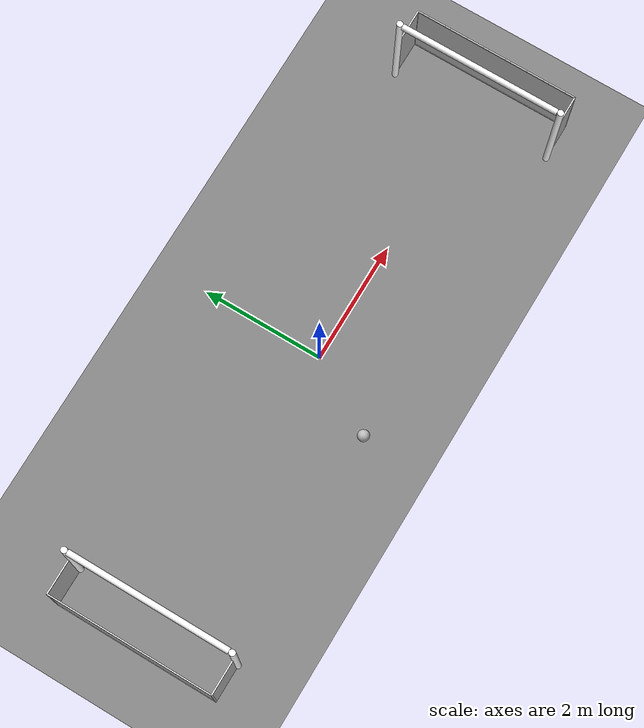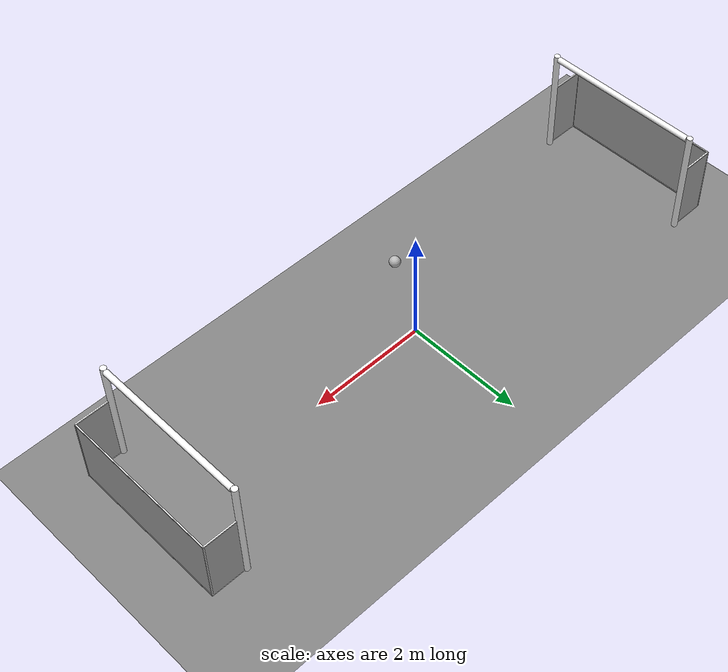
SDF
<sdf version="1.8">
 <world name="default">
  <light type="directional" name="my_directional_light">
   <pose>0 0 10 0 0 0</pose>
   <direction>-1 -2 -15</direction>
   <intensity>1.8</intensity>
   <diffuse>0.8 0.8 0.8 1</diffuse>
   <specular>0.5 0.5 0.5 1</specular>
   <cast_shadows>false</cast_shadows>
  </light>
  <scene><shadows>false</shadows></scene>
  <physics type="ode">
   <gravity>0 0 -9.81</gravity>
   <real_time_update_rate>2000</real_time_update_rate>
   <max_step_size>0.0005</max_step_size>
   <ode>
    <solver><type>quick</type><iters>50</iters><sor>1.4</sor></solver>
    <constraints>
     <cfm>0.0</cfm>
     <erp>0.2</erp>
     <contact_max_correcting_vel>100.0</contact_max_correcting_vel>
     <contact_surface_layer>0.1</contact_surface_layer>
    </constraints>
   </ode>
  </physics>
  <include><uri>model://soft_ground_plane</uri></include>
  <include><uri>model://teensize_ball</uri><pose>-0.700000 -1.180000 0.095 0 0 0</pose></include>
  <include><uri>model://teensize_goal</uri><pose>4.525 0 0 0 0 0</pose></include>
  <include><uri>model://teensize_goal2</uri><pose>-4.525 0 0 0 0 3.141592</pose></include>
 </world>
</sdf>

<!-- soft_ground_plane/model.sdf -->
<sdf version="1.5">
  <model name="soft_ground_plane">
    <static>true</static>
    <link name="link">
      <collision name="collision">
        <geometry>
          <plane>
            <normal>0 0 1</normal>
            <size>100 100</size>
          </plane>
        </geometry>
        <surface>
          <friction>
            <ode>
              <mu>50</mu>
              <mu2>50</mu2>
            </ode>
          </friction>
          <contact>
            <ode>
              <soft_cfm>0.0</soft_cfm>
              <soft_erp>0.2</soft_erp>
            </ode>
          </contact>
        </surface>
      </collision>
      <visual name="visual">
        <cast_shadows>false</cast_shadows>
        <geometry>
          <plane>
            <normal>0 0 1</normal>
            <size>100 100</size>
          </plane>
        </geometry>
        <material>
          <ambient>0.5 0.5 0.5 1</ambient>
          <diffuse>0.5 0.5 0.5 1</diffuse>
          <specular>0.1 0.1 0.1 1</specular>
        </material>
      </visual>
    </link>
  </model>
</sdf>

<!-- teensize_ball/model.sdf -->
<sdf version="1.5">
  <model name="teensize_ball"> <!-- The TeenSize ball is FIFA size 3, assumed to be diameter 19cm and weight 260 grams -->
    <pose>0 0 0.095 0 0 0</pose>
    <static>false</static>
    <link name="ball">
      <velocity_decay>
        <linear>0</linear>
        <angular>0.0008</angular>
      </velocity_decay>
      <inertial>
        <mass>0.260</mass>
        <inertia> <!-- For the origin of this inertia tensor refer to: https://en.wikipedia.org/wiki/List_of_moments_of_inertia#List_of_3D_inertia_tensors -->
          <ixx>0.00156</ixx>
          <iyy>0.00156</iyy>
          <izz>0.00156</izz>
          <ixy>0</ixy>
          <ixz>0</ixz>
          <iyz>0</iyz>
        </inertia>
      </inertial>
      <collision name="collision">
        <geometry>
          <sphere>
            <radius>0.095</radius>
          </sphere>
        </geometry>
      </collision>
      <visual name="visual">
        <geometry>
          <sphere>
            <radius>0.095</radius>
          </sphere>
        </geometry>
        <material>
          <pbr>
            <metal>
              <albedo_map>materials/textures/ball_official.png</albedo_map>
            </metal>
          </pbr>
        </material>
      </visual>
    </link>
  </model>
</sdf>

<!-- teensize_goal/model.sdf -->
<sdf version="1.5">
  <model name="teensize_goal">
    <static>true</static>
    <link name="left_post">
      <pose>0 1.35 0.95 0 0 0</pose>
      <collision name="collision">
        <geometry>
          <cylinder>
            <radius>0.05</radius>
            <length>1.9</length>
          </cylinder>
        </geometry>
      </collision>
      <visual name="visual">
        <geometry>
          <cylinder>
            <radius>0.05</radius>
            <length>1.9</length>
          </cylinder>
        </geometry>
        <material>
          <ambient>1 1 1 1</ambient>
          <diffuse>1 1 1 1</diffuse>
          <specular>0.1 0.1 0.1 1</specular>
        </material>
      </visual>
    </link>
    <link name="left_support_horiz_lower">
      <pose>0.3 1.35 0.01 0 0 0</pose>
      <collision name="collision">
        <geometry>
          <box>
            <size>0.6 0.02 0.02</size>
          </box>
        </geometry>
      </collision>
      <visual name="visual">
        <geometry>
          <box>
            <size>0.6 0.02 0.02</size>
          </box>
        </geometry>
        <material>
          <ambient>1 1 1 1</ambient>
          <diffuse>1 1 1 1</diffuse>
          <specular>0.1 0.1 0.1 1</specular>
        </material>
      </visual>
    </link>
    <link name="left_support_horiz_upper">
      <pose>0.3 1.35 1.2 0 0 0</pose>
      <collision name="collision">
        <geometry>
          <box>
            <size>0.6 0.02 0.02</size>
          </box>
        </geometry>
      </collision>
      <visual name="visual">
        <geometry>
          <box>
            <size>0.6 0.02 0.02</size>
          </box>
        </geometry>
        <material>
          <ambient>1 1 1 1</ambient>
          <diffuse>1 1 1 1</diffuse>
          <specular>0.1 0.1 0.1 1</specular>
        </material>
      </visual>
    </link>
    <link name="left_support_vertical">
      <pose>0.6 1.35 0.6 0 1.5708 0</pose>
      <collision name="collision">
        <geometry>
          <box>
            <size>1.2 0.02 0.02</size>
          </box>
        </geometry>
      </collision>
      <visual name="visual">
        <geometry>
          <box>
            <size>1.2 0.02 0.02</size>
          </box>
        </geometry>
        <material>
          <ambient>1 1 1 1</ambient>
          <diffuse>1 1 1 1</diffuse>
          <specular>0.1 0.1 0.1 1</specular>
        </material>
      </visual>
    </link>
    <link name="right_support_horiz_lower">
      <pose>0.3 -1.35 0.01 0 0 0</pose>
      <collision name="collision">
        <geometry>
          <box>
            <size>0.6 0.02 0.02</size>
          </box>
        </geometry>
      </collision>
      <visual name="visual">
        <geometry>
          <box>
            <size>0.6 0.02 0.02</size>
          </box>
        </geometry>
        <material>
          <ambient>1 1 1 1</ambient>
          <diffuse>1 1 1 1</diffuse>
          <specular>0.1 0.1 0.1 1</specular>
        </material>
      </visual>
    </link>
    <link name="right_support_horiz_upper">
      <pose>0.3 -1.35 1.2 0 0 0</pose>
      <collision name="collision">
        <geometry>
          <box>
            <size>0.6 0.02 0.02</size>
          </box>
        </geometry>
      </collision>
      <visual name="visual">
        <geometry>
          <box>
            <size>0.6 0.02 0.02</size>
          </box>
        </geometry>
        <material>
          <ambient>1 1 1 1</ambient>
          <diffuse>1 1 1 1</diffuse>
          <specular>0.1 0.1 0.1 1</specular>
        </material>
      </visual>
    </link>
    <link name="right_support_vertical">
      <pose>0.6 -1.35 0.6 0 1.5708 0</pose>
      <collision name="collision">
        <geometry>
          <box>
            <size>1.2 0.02 0.02</size>
          </box>
        </geometry>
      </collision>
      <visual name="visual">
        <geometry>
          <box>
            <size>1.2 0.02 0.02</size>
          </box>
        </geometry>
        <material>
          <ambient>1 1 1 1</ambient>
          <diffuse>1 1 1 1</diffuse>
          <specular>0.1 0.1 0.1 1</specular>
        </material>
      </visual>
    </link>
    <link name="center_support_horiz_lower">
      <pose>0.6 0 0.01 0 1.5708 0</pose>
      <collision name="collision">
        <geometry>
          <box>
            <size>0.02 2.7 0.02</size>
          </box>
        </geometry>
      </collision>
      <visual name="visual">
        <geometry>
          <box>
            <size>0.02 2.7 0.02</size>
          </box>
        </geometry>
        <material>
          <ambient>1 1 1 1</ambient>
          <diffuse>1 1 1 1</diffuse>
          <specular>0.1 0.1 0.1 1</specular>
        </material>
      </visual>
    </link>
    <link name="center_support_horiz_upper">
      <pose>0.6 0 1.2 0 1.5708 0</pose>
      <collision name="collision">
        <geometry>
          <box>
            <size>0.02 2.7 0.02</size>
          </box>
        </geometry>
      </collision>
      <visual name="visual">
        <geometry>
          <box>
            <size>0.02 2.7 0.02</size>
          </box>
        </geometry>
        <material>
          <ambient>1 1 1 1</ambient>
          <diffuse>1 1 1 1</diffuse>
          <specular>0.1 0.1 0.1 1</specular>
        </material>
      </visual>
    </link>
    <link name="right_post">
      <pose>0 -1.35 0.95 0 0 0</pose>
      <collision name="collision">
        <geometry>
          <cylinder>
            <radius>0.05</radius>
            <length>1.9</length>
          </cylinder>
        </geometry>
      </collision>
      <visual name="visual">
        <geometry>
          <cylinder>
            <radius>0.05</radius>
            <length>1.9</length>
          </cylinder>
        </geometry>
        <material>
          <ambient>1 1 1 1</ambient>
          <diffuse>1 1 1 1</diffuse>
          <specular>0.1 0.1 0.1 1</specular>
        </material>
      </visual>
    </link>
    <link name="crossbar">
      <pose>0 0 1.85 1.57 1.57 0</pose>
      <collision name="collision">
        <geometry>
          <cylinder>
            <radius>0.05</radius>
            <length>2.6</length>
          </cylinder>
        </geometry>
      </collision>
      <visual name="visual">
        <geometry>
          <cylinder>
            <radius>0.05</radius>
            <length>2.6</length>
          </cylinder>
        </geometry>
        <material>
          <ambient>1 1 1 1</ambient>
          <diffuse>1 1 1 1</diffuse>
          <specular>0.1 0.1 0.1 1</specular>
        </material>
      </visual>
    </link>
    <link name="center_net">
      <pose>0.6 0 0.6 0 0 0</pose>
      <collision name="collision">
        <geometry>
          <box>
            <size>0.01 2.7 1.2</size>
          </box>
        </geometry>
      </collision>
      <visual name="visual">
        <geometry>
          <box>
            <size>0.01 2.7 1.2</size>
          </box>
        </geometry>
        <material>
          <script>
            <uri>model://teensize_goal/materials/scripts/</uri>
            <uri>model://teensize_goal/materials/textures/</uri>
            <name>RoboCup/Net</name>
          </script>
        </material>
      </visual>
    </link>
    <link name="left_net">
      <pose>0.3 1.35 0.6 0 0 0</pose>
      <collision name="collision">
        <geometry>
          <box>
            <size>0.6 0.01 1.2</size>
          </box>
        </geometry>
      </collision>
      <visual name="visual">
        <geometry>
          <box>
            <size>0.6 0.01 1.2</size>
          </box>
        </geometry>
        <material>
          <script>
            <uri>model://teensize_goal/materials/scripts/</uri>
            <uri>model://teensize_goal/materials/textures/</uri>
            <name>RoboCup/Net</name>
          </script>
        </material>
      </visual>
    </link>
    <link name="right_net">
      <pose>0.3 -1.35 0.6 0 0 0</pose>
      <collision name="collision">
        <geometry>
          <box>
            <size>0.6 0.01 1.2</size>
          </box>
        </geometry>
      </collision>
      <visual name="visual">
        <geometry>
          <box>
            <size>0.6 0.01 1.2</size>
          </box>
        </geometry>
        <material>
          <script>
            <uri>model://teensize_goal/materials/scripts/</uri>
            <uri>model://teensize_goal/materials/textures/</uri>
            <name>RoboCup/Net</name>
          </script>
        </material>
      </visual>
    </link>
  </model>
</sdf>

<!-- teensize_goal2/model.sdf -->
<sdf version="1.5">
  <model name="teensize_goal2">
    <static>true</static>
    <link name="left_post">
      <pose>0 1.35 0.95 0 0 0</pose>
      <collision name="collision">
        <geometry>
          <cylinder>
            <radius>0.05</radius>
            <length>1.9</length>
          </cylinder>
        </geometry>
      </collision>
      <visual name="visual">
        <geometry>
          <cylinder>
            <radius>0.05</radius>
            <length>1.9</length>
          </cylinder>
        </geometry>
        <material>
          <ambient>1 1 1 1</ambient>
          <diffuse>1 1 1 1</diffuse>
          <specular>0.1 0.1 0.1 1</specular>
        </material>
      </visual>
    </link>
    <link name="left_support_horiz_lower">
      <pose>0.3 1.35 0.01 0 0 0</pose>
      <collision name="collision">
        <geometry>
          <box>
            <size>0.6 0.02 0.02</size>
          </box>
        </geometry>
      </collision>
      <visual name="visual">
        <geometry>
          <box>
            <size>0.6 0.02 0.02</size>
          </box>
        </geometry>
        <material>
          <ambient>1 1 1 1</ambient>
          <diffuse>1 1 1 1</diffuse>
          <specular>0.1 0.1 0.1 1</specular>
        </material>
      </visual>
    </link>
    <link name="left_support_horiz_upper">
      <pose>0.3 1.35 1.2 0 0 0</pose>
      <collision name="collision">
        <geometry>
          <box>
            <size>0.6 0.02 0.02</size>
          </box>
        </geometry>
      </collision>
      <visual name="visual">
        <geometry>
          <box>
            <size>0.6 0.02 0.02</size>
          </box>
        </geometry>
        <material>
          <ambient>1 1 1 1</ambient>
          <diffuse>1 1 1 1</diffuse>
          <specular>0.1 0.1 0.1 1</specular>
        </material>
      </visual>
    </link>
    <link name="left_support_vertical">
      <pose>0.6 1.35 0.6 0 1.5708 0</pose>
      <collision name="collision">
        <geometry>
          <box>
            <size>1.2 0.02 0.02</size>
          </box>
        </geometry>
      </collision>
      <visual name="visual">
        <geometry>
          <box>
            <size>1.2 0.02 0.02</size>
          </box>
        </geometry>
        <material>
          <ambient>1 1 1 1</ambient>
          <diffuse>1 1 1 1</diffuse>
          <specular>0.1 0.1 0.1 1</specular>
        </material>
      </visual>
    </link>
    <link name="right_support_horiz_lower">
      <pose>0.3 -1.35 0.01 0 0 0</pose>
      <collision name="collision">
        <geometry>
          <box>
            <size>0.6 0.02 0.02</size>
          </box>
        </geometry>
      </collision>
      <visual name="visual">
        <geometry>
          <box>
            <size>0.6 0.02 0.02</size>
          </box>
        </geometry>
        <material>
          <ambient>1 1 1 1</ambient>
          <diffuse>1 1 1 1</diffuse>
          <specular>0.1 0.1 0.1 1</specular>
        </material>
      </visual>
    </link>
    <link name="right_support_horiz_upper">
      <pose>0.3 -1.35 1.2 0 0 0</pose>
      <collision name="collision">
        <geometry>
          <box>
            <size>0.6 0.02 0.02</size>
          </box>
        </geometry>
      </collision>
      <visual name="visual">
        <geometry>
          <box>
            <size>0.6 0.02 0.02</size>
          </box>
        </geometry>
        <material>
          <ambient>1 1 1 1</ambient>
          <diffuse>1 1 1 1</diffuse>
          <specular>0.1 0.1 0.1 1</specular>
        </material>
      </visual>
    </link>
    <link name="right_support_vertical">
      <pose>0.6 -1.35 0.6 0 1.5708 0</pose>
      <collision name="collision">
        <geometry>
          <box>
            <size>1.2 0.02 0.02</size>
          </box>
        </geometry>
      </collision>
      <visual name="visual">
        <geometry>
          <box>
            <size>1.2 0.02 0.02</size>
          </box>
        </geometry>
        <material>
          <ambient>1 1 1 1</ambient>
          <diffuse>1 1 1 1</diffuse>
          <specular>0.1 0.1 0.1 1</specular>
        </material>
      </visual>
    </link>
    <link name="center_support_horiz_lower">
      <pose>0.6 0 0.01 0 1.5708 0</pose>
      <collision name="collision">
        <geometry>
          <box>
            <size>0.02 2.7 0.02</size>
          </box>
        </geometry>
      </collision>
      <visual name="visual">
        <geometry>
          <box>
            <size>0.02 2.7 0.02</size>
          </box>
        </geometry>
        <material>
          <ambient>1 1 1 1</ambient>
          <diffuse>1 1 1 1</diffuse>
          <specular>0.1 0.1 0.1 1</specular>
        </material>
      </visual>
    </link>
    <link name="center_support_horiz_upper">
      <pose>0.6 0 1.2 0 1.5708 0</pose>
      <collision name="collision">
        <geometry>
          <box>
            <size>0.02 2.7 0.02</size>
          </box>
        </geometry>
      </collision>
      <visual name="visual">
        <geometry>
          <box>
            <size>0.02 2.7 0.02</size>
          </box>
        </geometry>
        <material>
          <ambient>1 1 1 1</ambient>
          <diffuse>1 1 1 1</diffuse>
          <specular>0.1 0.1 0.1 1</specular>
        </material>
      </visual>
    </link>
    <link name="right_post">
      <pose>0 -1.35 0.95 0 0 0</pose>
      <collision name="collision">
        <geometry>
          <cylinder>
            <radius>0.05</radius>
            <length>1.9</length>
          </cylinder>
        </geometry>
      </collision>
      <visual name="visual">
        <geometry>
          <cylinder>
            <radius>0.05</radius>
            <length>1.9</length>
          </cylinder>
        </geometry>
        <material>
          <ambient>1 1 1 1</ambient>
          <diffuse>1 1 1 1</diffuse>
          <specular>0.1 0.1 0.1 1</specular>
        </material>
      </visual>
    </link>
    <link name="crossbar">
      <pose>0 0 1.85 1.57 1.57 0</pose>
      <collision name="collision">
        <geometry>
          <cylinder>
            <radius>0.05</radius>
            <length>2.6</length>
          </cylinder>
        </geometry>
      </collision>
      <visual name="visual">
        <geometry>
          <cylinder>
            <radius>0.05</radius>
            <length>2.6</length>
          </cylinder>
        </geometry>
        <material>
          <ambient>1 1 1 1</ambient>
          <diffuse>1 1 1 1</diffuse>
          <specular>0.1 0.1 0.1 1</specular>
        </material>
      </visual>
    </link>
    <link name="center_net">
      <pose>0.6 0 0.6 0 0 0</pose>
      <collision name="collision">
        <geometry>
          <box>
            <size>0.01 2.7 1.2</size>
          </box>
        </geometry>
      </collision>
      <visual name="visual">
        <geometry>
          <box>
            <size>0.01 2.7 1.2</size>
          </box>
        </geometry>
        <material>
          <script>
            <uri>model://teensize_goal/materials/scripts/</uri>
            <uri>model://teensize_goal/materials/textures/</uri>
            <name>RoboCup/Net</name>
          </script>
        </material>
      </visual>
    </link>
    <link name="left_net">
      <pose>0.3 1.35 0.6 0 0 0</pose>
      <collision name="collision">
        <geometry>
          <box>
            <size>0.6 0.01 1.2</size>
          </box>
        </geometry>
      </collision>
      <visual name="visual">
        <geometry>
          <box>
            <size>0.6 0.01 1.2</size>
          </box>
        </geometry>
        <material>
          <script>
            <uri>model://teensize_goal/materials/scripts/</uri>
            <uri>model://teensize_goal/materials/textures/</uri>
            <name>RoboCup/Net</name>
          </script>
        </material>
      </visual>
    </link>
    <link name="right_net">
      <pose>0.3 -1.35 0.6 0 0 0</pose>
      <collision name="collision">
        <geometry>
          <box>
            <size>0.6 0.01 1.2</size>
          </box>
        </geometry>
      </collision>
      <visual name="visual">
        <geometry>
          <box>
            <size>0.6 0.01 1.2</size>
          </box>
        </geometry>
        <material>
          <script>
            <uri>model://teensize_goal/materials/scripts/</uri>
            <uri>model://teensize_goal/materials/textures/</uri>
            <name>RoboCup/Net</name>
          </script>
        </material>
      </visual>
    </link>
  </model>
</sdf>
